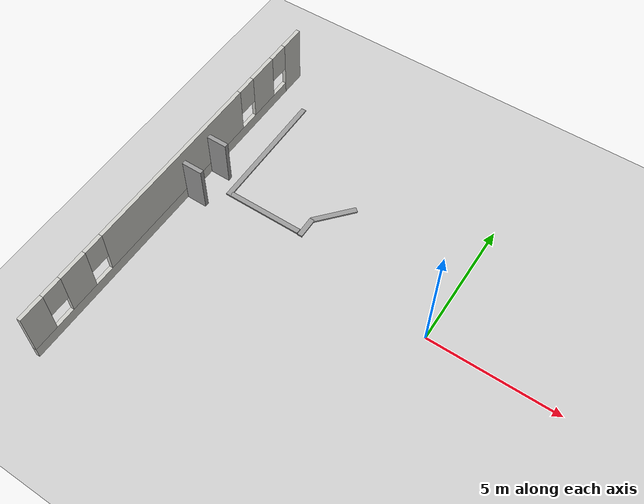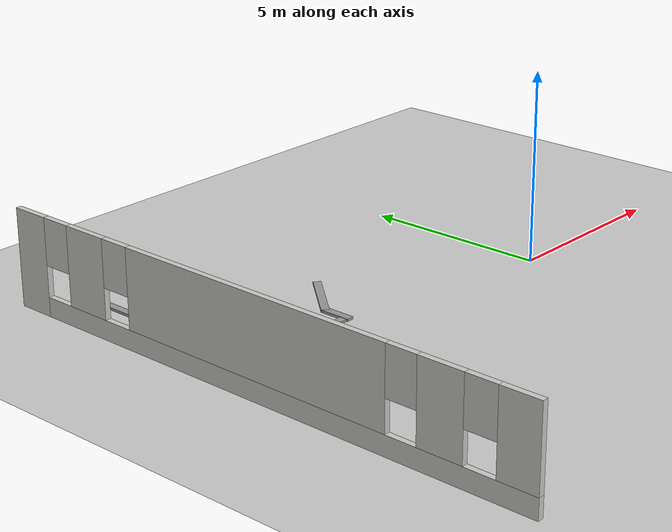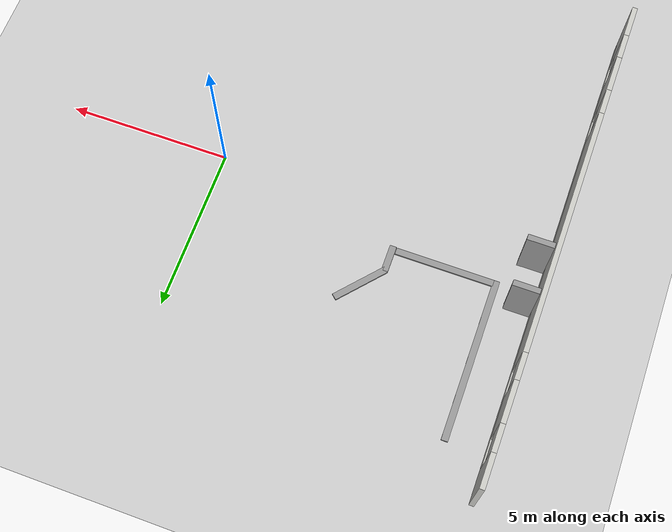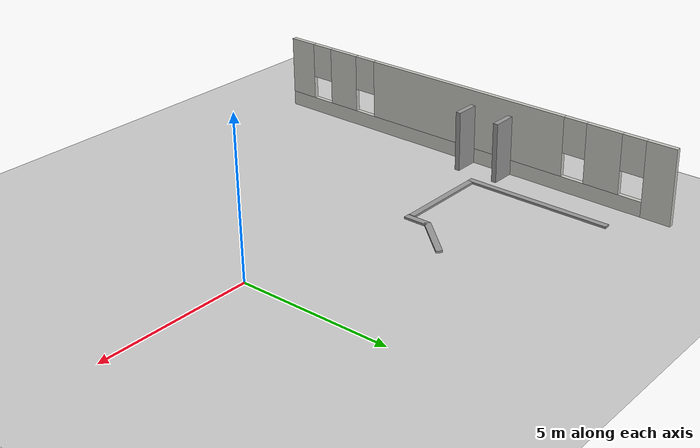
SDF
<sdf version="1.6">
 <world name="default">
  <model name="ground_plane">
   <static>1</static>
   <link name="link">
    <collision name="collision">
     <geometry><plane><normal>0 0 1</normal><size>100 100</size></plane></geometry>
     <surface><friction><ode><mu>100</mu><mu2>50</mu2></ode></friction></surface>
    </collision>
    <visual name="visual">
     <cast_shadows>0</cast_shadows>
     <geometry><plane><normal>0 0 1</normal><size>100 100</size></plane></geometry>
     <material>
      <script><uri>file://media/materials/scripts/gazebo.material</uri><name>Gazebo/Grey</name></script>
     </material>
    </visual>
   </link>
  </model>
  <model name="brick_box_3x1x3">
   <link name="link_1_clone">
    <pose>-1.84895 7.65508 0.5 0 -0 0</pose>
    <inertial>
     <mass>1</mass>
     <inertia>
      <ixx>0.166667</ixx>
      <ixy>0</ixy>
      <ixz>0</ixz>
      <iyy>0.166667</iyy>
      <iyz>0</iyz>
      <izz>0.166667</izz>
     </inertia>
    </inertial>
    <visual name="visual">
     <pose>0 0 -0.5 0 -0 0</pose>
     <geometry><box><size>0.2 5 0.1</size></box></geometry>
     <material>
      <lighting>1</lighting>
      <script><uri>file://media/materials/scripts/gazebo.material</uri><name>Gazebo/Grey</name></script>
      <ambient>0.3 0.3 0.3 1</ambient>
      <diffuse>0.7 0.7 0.7 1</diffuse>
      <specular>0.01 0.01 0.01 1</specular>
      <emissive>0 0 0 1</emissive>
      <shader type="vertex"><normal_map>__default__</normal_map></shader>
     </material>
    </visual>
    <collision name="collision">
     <pose>0 0 -0.5 0 -0 0</pose>
     <geometry><box><size>0.1 5 0.2</size></box></geometry>
     <surface>
      <friction>
       <ode><mu>1</mu><mu2>1</mu2><fdir1>0 0 0</fdir1><slip1>0</slip1><slip2>0</slip2></ode>
       <torsional>
        <coefficient>1</coefficient>
        <patch_radius>0</patch_radius>
        <surface_radius>0</surface_radius>
        <use_patch_radius>1</use_patch_radius>
        <ode><slip>0</slip></ode>
       </torsional>
      </friction>
      <bounce><restitution_coefficient>0</restitution_coefficient><threshold>1e+06</threshold></bounce>
      <contact>
       <collide_without_contact>0</collide_without_contact>
       <collide_without_contact_bitmask>1</collide_without_contact_bitmask>
       <collide_bitmask>1</collide_bitmask>
       <ode>
        <soft_cfm>0</soft_cfm>
        <soft_erp>0.2</soft_erp>
        <kp>1e+13</kp>
        <kd>1</kd>
        <max_vel>0.01</max_vel>
        <min_depth>0</min_depth>
       </ode>
       <bullet>
        <split_impulse>1</split_impulse>
        <split_impulse_penetration_threshold>-0.01</split_impulse_penetration_threshold>
        <soft_cfm>0</soft_cfm>
        <soft_erp>0.2</soft_erp>
        <kp>1e+13</kp>
        <kd>1</kd>
       </bullet>
      </contact>
     </surface>
    </collision>
   </link>
   <link name="link_1_clone_3_clone">
    <pose>-0.278142 5.2552 0.5 0 -0 0</pose>
    <inertial>
     <mass>1</mass>
     <inertia>
      <ixx>0.166667</ixx>
      <ixy>0</ixy>
      <ixz>0</ixz>
      <iyy>0.166667</iyy>
      <iyz>0</iyz>
      <izz>0.166667</izz>
     </inertia>
    </inertial>
    <visual name="visual">
     <pose>0 0 -0.5 0 -0 0</pose>
     <geometry><box><size>3 0.2 0.1</size></box></geometry>
     <material>
      <lighting>1</lighting>
      <script><uri>file://media/materials/scripts/gazebo.material</uri><name>Gazebo/Grey</name></script>
      <ambient>0.3 0.3 0.3 1</ambient>
      <diffuse>0.7 0.7 0.7 1</diffuse>
      <specular>0.01 0.01 0.01 1</specular>
      <emissive>0 0 0 1</emissive>
      <shader type="vertex"><normal_map>__default__</normal_map></shader>
     </material>
    </visual>
    <collision name="collision">
     <pose>0 0 -0.5 0 -0 0</pose>
     <geometry><box><size>3 0.2 0.2</size></box></geometry>
     <surface>
      <friction>
       <ode><mu>1</mu><mu2>1</mu2><fdir1>0 0 0</fdir1><slip1>0</slip1><slip2>0</slip2></ode>
       <torsional>
        <coefficient>1</coefficient>
        <patch_radius>0</patch_radius>
        <surface_radius>0</surface_radius>
        <use_patch_radius>1</use_patch_radius>
        <ode><slip>0</slip></ode>
       </torsional>
      </friction>
      <bounce><restitution_coefficient>0</restitution_coefficient><threshold>1e+06</threshold></bounce>
      <contact>
       <collide_without_contact>0</collide_without_contact>
       <collide_without_contact_bitmask>1</collide_without_contact_bitmask>
       <collide_bitmask>1</collide_bitmask>
       <ode>
        <soft_cfm>0</soft_cfm>
        <soft_erp>0.2</soft_erp>
        <kp>1e+13</kp>
        <kd>1</kd>
        <max_vel>0.01</max_vel>
        <min_depth>0</min_depth>
       </ode>
       <bullet>
        <split_impulse>1</split_impulse>
        <split_impulse_penetration_threshold>-0.01</split_impulse_penetration_threshold>
        <soft_cfm>0</soft_cfm>
        <soft_erp>0.2</soft_erp>
        <kp>1e+13</kp>
        <kd>1</kd>
       </bullet>
      </contact>
     </surface>
    </collision>
   </link>
   <link name="link_1_clone_3_clone_10_clone_0">
    <pose>1.88231 6.56558 0.5 0 0 -2.28733</pose>
    <inertial>
     <mass>0.507827</mass>
     <inertia>
      <ixx>0.0861472</ixx>
      <ixy>0</ixy>
      <ixz>0</ixz>
      <iyy>0.0528569</iyy>
      <iyz>0</iyz>
      <izz>0.0543659</izz>
     </inertia>
    </inertial>
    <visual name="visual">
     <pose>0 0 -0.5 0 -0 0</pose>
     <geometry><box><size>1.74653 0.203535 0.1</size></box></geometry>
     <material>
      <lighting>1</lighting>
      <script><uri>file://media/materials/scripts/gazebo.material</uri><name>Gazebo/Grey</name></script>
      <ambient>0.3 0.3 0.3 1</ambient>
      <diffuse>0.7 0.7 0.7 1</diffuse>
      <specular>0.01 0.01 0.01 1</specular>
      <emissive>0 0 0 1</emissive>
      <shader type="vertex"><normal_map>__default__</normal_map></shader>
     </material>
    </visual>
    <collision name="collision">
     <pose>0 0 -0.5 0 -0 0</pose>
     <geometry><box><size>1.74653 0.203535 0.2</size></box></geometry>
     <surface>
      <friction>
       <ode><mu>1</mu><mu2>1</mu2><fdir1>0 0 0</fdir1><slip1>0</slip1><slip2>0</slip2></ode>
       <torsional>
        <coefficient>1</coefficient>
        <patch_radius>0</patch_radius>
        <surface_radius>0</surface_radius>
        <use_patch_radius>1</use_patch_radius>
        <ode><slip>0</slip></ode>
       </torsional>
      </friction>
      <bounce><restitution_coefficient>0</restitution_coefficient><threshold>1e+06</threshold></bounce>
      <contact>
       <collide_without_contact>0</collide_without_contact>
       <collide_without_contact_bitmask>1</collide_without_contact_bitmask>
       <collide_bitmask>1</collide_bitmask>
       <ode>
        <soft_cfm>0</soft_cfm>
        <soft_erp>0.2</soft_erp>
        <kp>1e+13</kp>
        <kd>1</kd>
        <max_vel>0.01</max_vel>
        <min_depth>0</min_depth>
       </ode>
       <bullet>
        <split_impulse>1</split_impulse>
        <split_impulse_penetration_threshold>-0.01</split_impulse_penetration_threshold>
        <soft_cfm>0</soft_cfm>
        <soft_erp>0.2</soft_erp>
        <kp>1e+13</kp>
        <kd>1</kd>
       </bullet>
      </contact>
     </surface>
    </collision>
   </link>
   <link name="link_1_clone_3_clone_10_clone_1_clone">
    <pose>1.33845 5.54897 0.5 0 0 -1.56821</pose>
    <inertial>
     <mass>0.239353</mass>
     <inertia>
      <ixx>0.0406036</ixx>
      <ixy>0</ixy>
      <ixz>0</ixz>
      <iyy>0.0210496</iyy>
      <iyz>0</iyz>
      <izz>0.0217608</izz>
     </inertia>
    </inertial>
    <visual name="visual">
     <pose>0 0 -0.5 0 -0 0</pose>
     <geometry><box><size>0.823187 0.203535 0.1</size></box></geometry>
     <material>
      <lighting>1</lighting>
      <script><uri>file://media/materials/scripts/gazebo.material</uri><name>Gazebo/Grey</name></script>
      <ambient>0.3 0.3 0.3 1</ambient>
      <diffuse>0.7 0.7 0.7 1</diffuse>
      <specular>0.01 0.01 0.01 1</specular>
      <emissive>0 0 0 1</emissive>
      <shader type="vertex"><normal_map>__default__</normal_map></shader>
     </material>
    </visual>
    <collision name="collision">
     <pose>0 0 -0.5 0 -0 0</pose>
     <geometry><box><size>0.823187 0.203535 0.2</size></box></geometry>
     <surface>
      <friction>
       <ode><mu>1</mu><mu2>1</mu2><fdir1>0 0 0</fdir1><slip1>0</slip1><slip2>0</slip2></ode>
       <torsional>
        <coefficient>1</coefficient>
        <patch_radius>0</patch_radius>
        <surface_radius>0</surface_radius>
        <use_patch_radius>1</use_patch_radius>
        <ode><slip>0</slip></ode>
       </torsional>
      </friction>
      <bounce><restitution_coefficient>0</restitution_coefficient><threshold>1e+06</threshold></bounce>
      <contact>
       <collide_without_contact>0</collide_without_contact>
       <collide_without_contact_bitmask>1</collide_without_contact_bitmask>
       <collide_bitmask>1</collide_bitmask>
       <ode>
        <soft_cfm>0</soft_cfm>
        <soft_erp>0.2</soft_erp>
        <kp>1e+13</kp>
        <kd>1</kd>
        <max_vel>0.01</max_vel>
        <min_depth>0</min_depth>
       </ode>
       <bullet>
        <split_impulse>1</split_impulse>
        <split_impulse_penetration_threshold>-0.01</split_impulse_penetration_threshold>
        <soft_cfm>0</soft_cfm>
        <soft_erp>0.2</soft_erp>
        <kp>1e+13</kp>
        <kd>1</kd>
       </bullet>
      </contact>
     </surface>
    </collision>
   </link>
   <static>1</static>
   <pose>-7.10254 -4.10597 0 0 -0 0</pose>
  </model>
  <model name="CV1_giardino2">
   <link name="Door_1">
    <pose>-12.2685 1.79069 0 0 -0 0</pose>
    <visual name="Door_1_Visual">
     <pose>0 0 1 0 -0 0</pose>
     <geometry><box><size>0.9 0.17 2</size></box></geometry>
     <material>
      <script><uri>file://media/materials/scripts/gazebo.material</uri><name>Gazebo/Grey</name></script>
      <ambient>0.3 0.3 0.3 1</ambient>
      <diffuse>0.7 0.7 0.7 1</diffuse>
      <specular>0.01 0.01 0.01 1</specular>
      <emissive>0 0 0 1</emissive>
     </material>
    </visual>
    <collision name="Door_1_Collision">
     <pose>0 0 1 0 -0 0</pose>
     <geometry><box><size>0.9 0.17 2</size></box></geometry>
     <surface>
      <friction>
       <ode><mu>1</mu><mu2>1</mu2><fdir1>0 0 0</fdir1><slip1>0</slip1><slip2>0</slip2></ode>
       <torsional>
        <coefficient>1</coefficient>
        <patch_radius>0</patch_radius>
        <surface_radius>0</surface_radius>
        <use_patch_radius>1</use_patch_radius>
        <ode><slip>0</slip></ode>
       </torsional>
      </friction>
      <bounce><restitution_coefficient>0</restitution_coefficient><threshold>1e+06</threshold></bounce>
      <contact>
       <collide_without_contact>0</collide_without_contact>
       <collide_without_contact_bitmask>1</collide_without_contact_bitmask>
       <collide_bitmask>1</collide_bitmask>
       <ode>
        <soft_cfm>0</soft_cfm>
        <soft_erp>0.2</soft_erp>
        <kp>1e+13</kp>
        <kd>1</kd>
        <max_vel>0.01</max_vel>
        <min_depth>0</min_depth>
       </ode>
       <bullet>
        <split_impulse>1</split_impulse>
        <split_impulse_penetration_threshold>-0.01</split_impulse_penetration_threshold>
        <soft_cfm>0</soft_cfm>
        <soft_erp>0.2</soft_erp>
        <kp>1e+13</kp>
        <kd>1</kd>
       </bullet>
      </contact>
     </surface>
    </collision>
   </link>
   <link name="Door_2">
    <pose>-12.2685 0.359125 0 0 -0 0</pose>
    <visual name="Door_2_Visual">
     <pose>0 0 1 0 -0 0</pose>
     <geometry><box><size>0.9 0.17 2</size></box></geometry>
     <material>
      <script><uri>file://media/materials/scripts/gazebo.material</uri><name>Gazebo/Grey</name></script>
      <ambient>0.3 0.3 0.3 1</ambient>
      <diffuse>0.7 0.7 0.7 1</diffuse>
      <specular>0.01 0.01 0.01 1</specular>
      <emissive>0 0 0 1</emissive>
     </material>
    </visual>
    <collision name="Door_2_Collision">
     <pose>0 0 1 0 -0 0</pose>
     <geometry><box><size>0.9 0.17 2</size></box></geometry>
     <surface>
      <friction>
       <ode><mu>1</mu><mu2>1</mu2><fdir1>0 0 0</fdir1><slip1>0</slip1><slip2>0</slip2></ode>
       <torsional>
        <coefficient>1</coefficient>
        <patch_radius>0</patch_radius>
        <surface_radius>0</surface_radius>
        <use_patch_radius>1</use_patch_radius>
        <ode><slip>0</slip></ode>
       </torsional>
      </friction>
      <bounce><restitution_coefficient>0</restitution_coefficient><threshold>1e+06</threshold></bounce>
      <contact>
       <collide_without_contact>0</collide_without_contact>
       <collide_without_contact_bitmask>1</collide_without_contact_bitmask>
       <collide_bitmask>1</collide_bitmask>
       <ode>
        <soft_cfm>0</soft_cfm>
        <soft_erp>0.2</soft_erp>
        <kp>1e+13</kp>
        <kd>1</kd>
        <max_vel>0.01</max_vel>
        <min_depth>0</min_depth>
       </ode>
       <bullet>
        <split_impulse>1</split_impulse>
        <split_impulse_penetration_threshold>-0.01</split_impulse_penetration_threshold>
        <soft_cfm>0</soft_cfm>
        <soft_erp>0.2</soft_erp>
        <kp>1e+13</kp>
        <kd>1</kd>
       </bullet>
      </contact>
     </surface>
    </collision>
   </link>
   <link name="Wall_0">
    <pose>-12.7005 0.009036 0 0 0 -1.57729</pose>
    <visual name="Wall_0_Visual_0">
     <pose>-7.07005 0 1.25 0 -0 0</pose>
     <geometry><box><size>0.999785 0.15 2.5</size></box></geometry>
     <material>
      <script><uri>file://media/materials/scripts/gazebo.material</uri><name>Gazebo/CeilingTiled</name></script>
      <ambient>1 1 1 1</ambient>
      <diffuse>1 1 1 1</diffuse>
      <specular>0 0 0 1</specular>
      <emissive>0 0 0 1</emissive>
     </material>
    </visual>
    <visual name="Wall_0_Visual_1">
     <pose>0.499892 0 0.25 0 -0 0</pose>
     <geometry><box><size>14.1401 0.15 0.5</size></box></geometry>
     <material>
      <script><uri>file://media/materials/scripts/gazebo.material</uri><name>Gazebo/CeilingTiled</name></script>
      <ambient>1 1 1 1</ambient>
      <diffuse>1 1 1 1</diffuse>
      <specular>0 0 0 1</specular>
      <emissive>0 0 0 1</emissive>
     </material>
    </visual>
    <visual name="Wall_0_Visual_2">
     <pose>-5.15824 0 1.5 0 -0 0</pose>
     <geometry><box><size>1.22384 0.15 2</size></box></geometry>
     <material>
      <script><uri>file://media/materials/scripts/gazebo.material</uri><name>Gazebo/CeilingTiled</name></script>
      <ambient>1 1 1 1</ambient>
      <diffuse>1 1 1 1</diffuse>
      <specular>0 0 0 1</specular>
      <emissive>0 0 0 1</emissive>
     </material>
    </visual>
    <visual name="Wall_0_Visual_3">
     <pose>0.034926 0 1.5 0 -0 0</pose>
     <geometry><box><size>7.56249 0.15 2</size></box></geometry>
     <material>
      <script><uri>file://media/materials/scripts/gazebo.material</uri><name>Gazebo/CeilingTiled</name></script>
      <ambient>1 1 1 1</ambient>
      <diffuse>1 1 1 1</diffuse>
      <specular>0 0 0 1</specular>
      <emissive>0 0 0 1</emissive>
     </material>
    </visual>
    <visual name="Wall_0_Visual_4">
     <pose>5.1919 0 1.5 0 -0 0</pose>
     <geometry><box><size>1.15146 0.15 2</size></box></geometry>
     <material>
      <script><uri>file://media/materials/scripts/gazebo.material</uri><name>Gazebo/CeilingTiled</name></script>
      <ambient>1 1 1 1</ambient>
      <diffuse>1 1 1 1</diffuse>
      <specular>0 0 0 1</specular>
      <emissive>0 0 0 1</emissive>
     </material>
    </visual>
    <visual name="Wall_0_Visual_5">
     <pose>7.06879 0 1.5 0 -0 0</pose>
     <geometry><box><size>1.00231 0.15 2</size></box></geometry>
     <material>
      <script><uri>file://media/materials/scripts/gazebo.material</uri><name>Gazebo/CeilingTiled</name></script>
      <ambient>1 1 1 1</ambient>
      <diffuse>1 1 1 1</diffuse>
      <specular>0 0 0 1</specular>
      <emissive>0 0 0 1</emissive>
     </material>
    </visual>
    <visual name="Wall_0_Visual_6">
     <pose>-6.17016 0 1.9 0 -0 0</pose>
     <geometry><box><size>0.8 0.15 1.2</size></box></geometry>
     <material>
      <script><uri>file://media/materials/scripts/gazebo.material</uri><name>Gazebo/CeilingTiled</name></script>
      <ambient>1 1 1 1</ambient>
      <diffuse>1 1 1 1</diffuse>
      <specular>0 0 0 1</specular>
      <emissive>0 0 0 1</emissive>
     </material>
    </visual>
    <visual name="Wall_0_Visual_7">
     <pose>-4.14632 0 1.9 0 -0 0</pose>
     <geometry><box><size>0.8 0.15 1.2</size></box></geometry>
     <material>
      <script><uri>file://media/materials/scripts/gazebo.material</uri><name>Gazebo/CeilingTiled</name></script>
      <ambient>1 1 1 1</ambient>
      <diffuse>1 1 1 1</diffuse>
      <specular>0 0 0 1</specular>
      <emissive>0 0 0 1</emissive>
     </material>
    </visual>
    <visual name="Wall_0_Visual_8">
     <pose>4.21617 0 1.9 0 -0 0</pose>
     <geometry><box><size>0.8 0.15 1.2</size></box></geometry>
     <material>
      <script><uri>file://media/materials/scripts/gazebo.material</uri><name>Gazebo/CeilingTiled</name></script>
      <ambient>1 1 1 1</ambient>
      <diffuse>1 1 1 1</diffuse>
      <specular>0 0 0 1</specular>
      <emissive>0 0 0 1</emissive>
     </material>
    </visual>
    <visual name="Wall_0_Visual_9">
     <pose>6.16763 0 1.9 0 -0 0</pose>
     <geometry><box><size>0.8 0.15 1.2</size></box></geometry>
     <material>
      <script><uri>file://media/materials/scripts/gazebo.material</uri><name>Gazebo/CeilingTiled</name></script>
      <ambient>1 1 1 1</ambient>
      <diffuse>1 1 1 1</diffuse>
      <specular>0 0 0 1</specular>
      <emissive>0 0 0 1</emissive>
     </material>
    </visual>
    <collision name="Wall_0_Collision_0">
     <pose>-7.07005 0 1.25 0 -0 0</pose>
     <geometry><box><size>0.999785 0.15 2.5</size></box></geometry>
     <surface>
      <friction>
       <ode><mu>1</mu><mu2>1</mu2><fdir1>0 0 0</fdir1><slip1>0</slip1><slip2>0</slip2></ode>
       <torsional>
        <coefficient>1</coefficient>
        <patch_radius>0</patch_radius>
        <surface_radius>0</surface_radius>
        <use_patch_radius>1</use_patch_radius>
        <ode><slip>0</slip></ode>
       </torsional>
      </friction>
      <bounce><restitution_coefficient>0</restitution_coefficient><threshold>1e+06</threshold></bounce>
      <contact>
       <collide_without_contact>0</collide_without_contact>
       <collide_without_contact_bitmask>1</collide_without_contact_bitmask>
       <collide_bitmask>1</collide_bitmask>
       <ode>
        <soft_cfm>0</soft_cfm>
        <soft_erp>0.2</soft_erp>
        <kp>1e+13</kp>
        <kd>1</kd>
        <max_vel>0.01</max_vel>
        <min_depth>0</min_depth>
       </ode>
       <bullet>
        <split_impulse>1</split_impulse>
        <split_impulse_penetration_threshold>-0.01</split_impulse_penetration_threshold>
        <soft_cfm>0</soft_cfm>
        <soft_erp>0.2</soft_erp>
        <kp>1e+13</kp>
        <kd>1</kd>
       </bullet>
      </contact>
     </surface>
    </collision>
    <collision name="Wall_0_Collision_1">
     <pose>0.499892 0 0.25 0 -0 0</pose>
     <geometry><box><size>14.1401 0.15 0.5</size></box></geometry>
     <surface>
      <friction>
       <ode><mu>1</mu><mu2>1</mu2><fdir1>0 0 0</fdir1><slip1>0</slip1><slip2>0</slip2></ode>
       <torsional>
        <coefficient>1</coefficient>
        <patch_radius>0</patch_radius>
        <surface_radius>0</surface_radius>
        <use_patch_radius>1</use_patch_radius>
        <ode><slip>0</slip></ode>
       </torsional>
      </friction>
      <bounce><restitution_coefficient>0</restitution_coefficient><threshold>1e+06</threshold></bounce>
      <contact>
       <collide_without_contact>0</collide_without_contact>
       <collide_without_contact_bitmask>1</collide_without_contact_bitmask>
       <collide_bitmask>1</collide_bitmask>
       <ode>
        <soft_cfm>0</soft_cfm>
        <soft_erp>0.2</soft_erp>
        <kp>1e+13</kp>
        <kd>1</kd>
        <max_vel>0.01</max_vel>
        <min_depth>0</min_depth>
       </ode>
       <bullet>
        <split_impulse>1</split_impulse>
        <split_impulse_penetration_threshold>-0.01</split_impulse_penetration_threshold>
        <soft_cfm>0</soft_cfm>
        <soft_erp>0.2</soft_erp>
        <kp>1e+13</kp>
        <kd>1</kd>
       </bullet>
      </contact>
     </surface>
    </collision>
    <collision name="Wall_0_Collision_2">
     <pose>-5.15824 0 1.5 0 -0 0</pose>
     <geometry><box><size>1.22384 0.15 2</size></box></geometry>
     <surface>
      <friction>
       <ode><mu>1</mu><mu2>1</mu2><fdir1>0 0 0</fdir1><slip1>0</slip1><slip2>0</slip2></ode>
       <torsional>
        <coefficient>1</coefficient>
        <patch_radius>0</patch_radius>
        <surface_radius>0</surface_radius>
        <use_patch_radius>1</use_patch_radius>
        <ode><slip>0</slip></ode>
       </torsional>
      </friction>
      <bounce><restitution_coefficient>0</restitution_coefficient><threshold>1e+06</threshold></bounce>
      <contact>
       <collide_without_contact>0</collide_without_contact>
       <collide_without_contact_bitmask>1</collide_without_contact_bitmask>
       <collide_bitmask>1</collide_bitmask>
       <ode>
        <soft_cfm>0</soft_cfm>
        <soft_erp>0.2</soft_erp>
        <kp>1e+13</kp>
        <kd>1</kd>
        <max_vel>0.01</max_vel>
        <min_depth>0</min_depth>
       </ode>
       <bullet>
        <split_impulse>1</split_impulse>
        <split_impulse_penetration_threshold>-0.01</split_impulse_penetration_threshold>
        <soft_cfm>0</soft_cfm>
        <soft_erp>0.2</soft_erp>
        <kp>1e+13</kp>
        <kd>1</kd>
       </bullet>
      </contact>
     </surface>
    </collision>
    <collision name="Wall_0_Collision_3">
     <pose>0.034926 0 1.5 0 -0 0</pose>
     <geometry><box><size>7.56249 0.15 2</size></box></geometry>
     <surface>
      <friction>
       <ode><mu>1</mu><mu2>1</mu2><fdir1>0 0 0</fdir1><slip1>0</slip1><slip2>0</slip2></ode>
       <torsional>
        <coefficient>1</coefficient>
        <patch_radius>0</patch_radius>
        <surface_radius>0</surface_radius>
        <use_patch_radius>1</use_patch_radius>
        <ode><slip>0</slip></ode>
       </torsional>
      </friction>
      <bounce><restitution_coefficient>0</restitution_coefficient><threshold>1e+06</threshold></bounce>
      <contact>
       <collide_without_contact>0</collide_without_contact>
       <collide_without_contact_bitmask>1</collide_without_contact_bitmask>
       <collide_bitmask>1</collide_bitmask>
       <ode>
        <soft_cfm>0</soft_cfm>
        <soft_erp>0.2</soft_erp>
        <kp>1e+13</kp>
        <kd>1</kd>
        <max_vel>0.01</max_vel>
        <min_depth>0</min_depth>
       </ode>
       <bullet>
        <split_impulse>1</split_impulse>
        <split_impulse_penetration_threshold>-0.01</split_impulse_penetration_threshold>
        <soft_cfm>0</soft_cfm>
        <soft_erp>0.2</soft_erp>
        <kp>1e+13</kp>
        <kd>1</kd>
       </bullet>
      </contact>
     </surface>
    </collision>
    <collision name="Wall_0_Collision_5">
     <pose>7.06879 0 1.5 0 -0 0</pose>
     <geometry><box><size>1.00231 0.15 2</size></box></geometry>
     <surface>
      <friction>
       <ode><mu>1</mu><mu2>1</mu2><fdir1>0 0 0</fdir1><slip1>0</slip1><slip2>0</slip2></ode>
       <torsional>
        <coefficient>1</coefficient>
        <patch_radius>0</patch_radius>
        <surface_radius>0</surface_radius>
        <use_patch_radius>1</use_patch_radius>
        <ode><slip>0</slip></ode>
       </torsional>
      </friction>
      <bounce><restitution_coefficient>0</restitution_coefficient><threshold>1e+06</threshold></bounce>
      <contact>
       <collide_without_contact>0</collide_without_contact>
       <collide_without_contact_bitmask>1</collide_without_contact_bitmask>
       <collide_bitmask>1</collide_bitmask>
       <ode>
        <soft_cfm>0</soft_cfm>
        <soft_erp>0.2</soft_erp>
        <kp>1e+13</kp>
        <kd>1</kd>
        <max_vel>0.01</max_vel>
        <min_depth>0</min_depth>
       </ode>
       <bullet>
        <split_impulse>1</split_impulse>
        <split_impulse_penetration_threshold>-0.01</split_impulse_penetration_threshold>
        <soft_cfm>0</soft_cfm>
        <soft_erp>0.2</soft_erp>
        <kp>1e+13</kp>
        <kd>1</kd>
       </bullet>
      </contact>
     </surface>
    </collision>
    <collision name="Wall_0_Collision_4">
     <pose>5.1919 0 1.5 0 -0 0</pose>
     <geometry><box><size>1.15146 0.15 2</size></box></geometry>
     <surface>
      <friction>
       <ode><mu>1</mu><mu2>1</mu2><fdir1>0 0 0</fdir1><slip1>0</slip1><slip2>0</slip2></ode>
       <torsional>
        <coefficient>1</coefficient>
        <patch_radius>0</patch_radius>
        <surface_radius>0</surface_radius>
        <use_patch_radius>1</use_patch_radius>
        <ode><slip>0</slip></ode>
       </torsional>
      </friction>
      <bounce><restitution_coefficient>0</restitution_coefficient><threshold>1e+06</threshold></bounce>
      <contact>
       <collide_without_contact>0</collide_without_contact>
       <collide_without_contact_bitmask>1</collide_without_contact_bitmask>
       <collide_bitmask>1</collide_bitmask>
       <ode>
        <soft_cfm>0</soft_cfm>
        <soft_erp>0.2</soft_erp>
        <kp>1e+13</kp>
        <kd>1</kd>
        <max_vel>0.01</max_vel>
        <min_depth>0</min_depth>
       </ode>
       <bullet>
        <split_impulse>1</split_impulse>
        <split_impulse_penetration_threshold>-0.01</split_impulse_penetration_threshold>
        <soft_cfm>0</soft_cfm>
        <soft_erp>0.2</soft_erp>
        <kp>1e+13</kp>
        <kd>1</kd>
       </bullet>
      </contact>
     </surface>
    </collision>
    <collision name="Wall_0_Collision_6">
     <pose>-6.17016 0 1.9 0 -0 0</pose>
     <geometry><box><size>0.8 0.15 1.2</size></box></geometry>
     <surface>
      <friction>
       <ode><mu>1</mu><mu2>1</mu2><fdir1>0 0 0</fdir1><slip1>0</slip1><slip2>0</slip2></ode>
       <torsional>
        <coefficient>1</coefficient>
        <patch_radius>0</patch_radius>
        <surface_radius>0</surface_radius>
        <use_patch_radius>1</use_patch_radius>
        <ode><slip>0</slip></ode>
       </torsional>
      </friction>
      <bounce><restitution_coefficient>0</restitution_coefficient><threshold>1e+06</threshold></bounce>
      <contact>
       <collide_without_contact>0</collide_without_contact>
       <collide_without_contact_bitmask>1</collide_without_contact_bitmask>
       <collide_bitmask>1</collide_bitmask>
       <ode>
        <soft_cfm>0</soft_cfm>
        <soft_erp>0.2</soft_erp>
        <kp>1e+13</kp>
        <kd>1</kd>
        <max_vel>0.01</max_vel>
        <min_depth>0</min_depth>
       </ode>
       <bullet>
        <split_impulse>1</split_impulse>
        <split_impulse_penetration_threshold>-0.01</split_impulse_penetration_threshold>
        <soft_cfm>0</soft_cfm>
        <soft_erp>0.2</soft_erp>
        <kp>1e+13</kp>
        <kd>1</kd>
       </bullet>
      </contact>
     </surface>
    </collision>
    <collision name="Wall_0_Collision_7">
     <pose>-4.14632 0 1.9 0 -0 0</pose>
     <geometry><box><size>0.8 0.15 1.2</size></box></geometry>
     <surface>
      <friction>
       <ode><mu>1</mu><mu2>1</mu2><fdir1>0 0 0</fdir1><slip1>0</slip1><slip2>0</slip2></ode>
       <torsional>
        <coefficient>1</coefficient>
        <patch_radius>0</patch_radius>
        <surface_radius>0</surface_radius>
        <use_patch_radius>1</use_patch_radius>
        <ode><slip>0</slip></ode>
       </torsional>
      </friction>
      <bounce><restitution_coefficient>0</restitution_coefficient><threshold>1e+06</threshold></bounce>
      <contact>
       <collide_without_contact>0</collide_without_contact>
       <collide_without_contact_bitmask>1</collide_without_contact_bitmask>
       <collide_bitmask>1</collide_bitmask>
       <ode>
        <soft_cfm>0</soft_cfm>
        <soft_erp>0.2</soft_erp>
        <kp>1e+13</kp>
        <kd>1</kd>
        <max_vel>0.01</max_vel>
        <min_depth>0</min_depth>
       </ode>
       <bullet>
        <split_impulse>1</split_impulse>
        <split_impulse_penetration_threshold>-0.01</split_impulse_penetration_threshold>
        <soft_cfm>0</soft_cfm>
        <soft_erp>0.2</soft_erp>
        <kp>1e+13</kp>
        <kd>1</kd>
       </bullet>
      </contact>
     </surface>
    </collision>
    <collision name="Wall_0_Collision_9">
     <pose>6.16763 0 1.9 0 -0 0</pose>
     <geometry><box><size>0.8 0.15 1.2</size></box></geometry>
     <surface>
      <friction>
       <ode><mu>1</mu><mu2>1</mu2><fdir1>0 0 0</fdir1><slip1>0</slip1><slip2>0</slip2></ode>
       <torsional>
        <coefficient>1</coefficient>
        <patch_radius>0</patch_radius>
        <surface_radius>0</surface_radius>
        <use_patch_radius>1</use_patch_radius>
        <ode><slip>0</slip></ode>
       </torsional>
      </friction>
      <bounce><restitution_coefficient>0</restitution_coefficient><threshold>1e+06</threshold></bounce>
      <contact>
       <collide_without_contact>0</collide_without_contact>
       <collide_without_contact_bitmask>1</collide_without_contact_bitmask>
       <collide_bitmask>1</collide_bitmask>
       <ode>
        <soft_cfm>0</soft_cfm>
        <soft_erp>0.2</soft_erp>
        <kp>1e+13</kp>
        <kd>1</kd>
        <max_vel>0.01</max_vel>
        <min_depth>0</min_depth>
       </ode>
       <bullet>
        <split_impulse>1</split_impulse>
        <split_impulse_penetration_threshold>-0.01</split_impulse_penetration_threshold>
        <soft_cfm>0</soft_cfm>
        <soft_erp>0.2</soft_erp>
        <kp>1e+13</kp>
        <kd>1</kd>
       </bullet>
      </contact>
     </surface>
    </collision>
    <collision name="Wall_0_Collision_8">
     <pose>4.21617 0 1.9 0 -0 0</pose>
     <geometry><box><size>0.8 0.15 1.2</size></box></geometry>
     <surface>
      <friction>
       <ode><mu>1</mu><mu2>1</mu2><fdir1>0 0 0</fdir1><slip1>0</slip1><slip2>0</slip2></ode>
       <torsional>
        <coefficient>1</coefficient>
        <patch_radius>0</patch_radius>
        <surface_radius>0</surface_radius>
        <use_patch_radius>1</use_patch_radius>
        <ode><slip>0</slip></ode>
       </torsional>
      </friction>
      <bounce><restitution_coefficient>0</restitution_coefficient><threshold>1e+06</threshold></bounce>
      <contact>
       <collide_without_contact>0</collide_without_contact>
       <collide_without_contact_bitmask>1</collide_without_contact_bitmask>
       <collide_bitmask>1</collide_bitmask>
       <ode>
        <soft_cfm>0</soft_cfm>
        <soft_erp>0.2</soft_erp>
        <kp>1e+13</kp>
        <kd>1</kd>
        <max_vel>0.01</max_vel>
        <min_depth>0</min_depth>
       </ode>
       <bullet>
        <split_impulse>1</split_impulse>
        <split_impulse_penetration_threshold>-0.01</split_impulse_penetration_threshold>
        <soft_cfm>0</soft_cfm>
        <soft_erp>0.2</soft_erp>
        <kp>1e+13</kp>
        <kd>1</kd>
       </bullet>
      </contact>
     </surface>
    </collision>
   </link>
   <static>1</static>
   <pose>2.46902 -0.09324 0 0 -0 0</pose>
  </model>
 </world>
</sdf>
